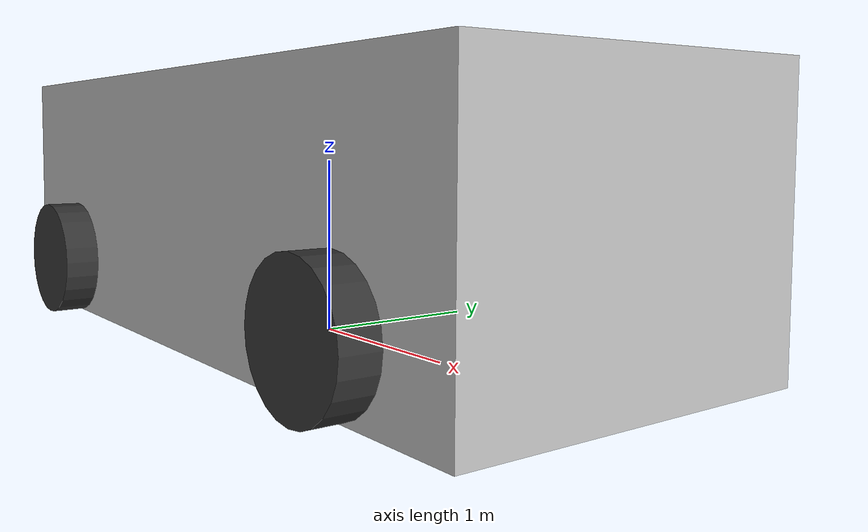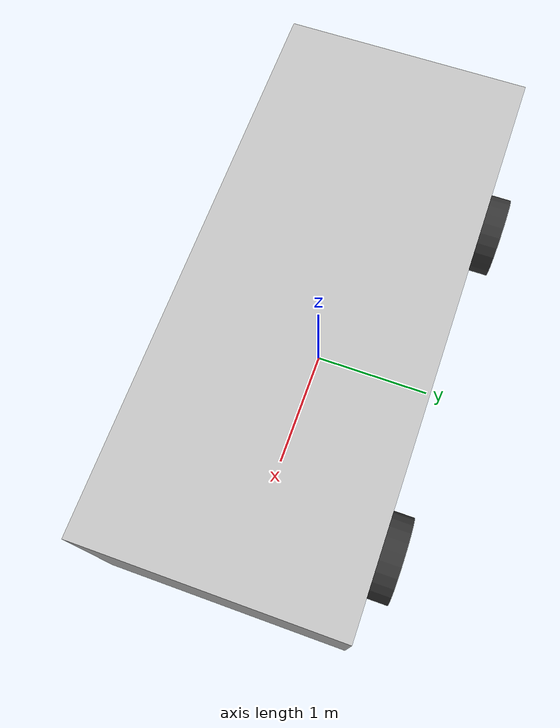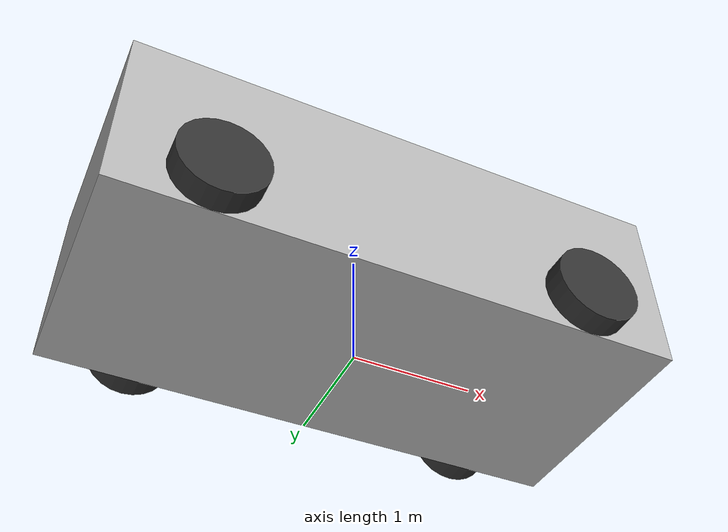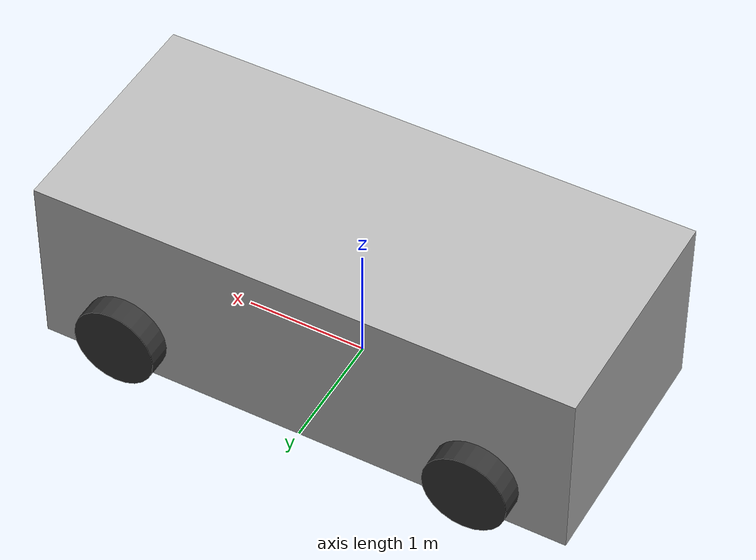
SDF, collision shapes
<?xml version="1.0" ?>
<sdf version="1.9">
  <model name="suv">
    <static>false</static>

    <!-- Vehicle Chassis (using original mesh) -->
    <link name="chassis">
      <pose>0 0 0.5 0 0 0</pose>

      <inertial>
        <mass>1500.0</mass>
        <inertia>
          <ixx>500.0</ixx>
          <ixy>0</ixy>
          <ixz>0</ixz>
          <iyy>1000.0</iyy>
          <iyz>0</iyz>
          <izz>1000.0</izz>
        </inertia>
      </inertial>

      <visual name="visual">
        <pose>0 0 -0.5 0 0 -1.57079632679</pose>
        <geometry>
          <mesh>
            <scale>0.06 0.06 0.06</scale>
            <uri>model://SUV/meshes/suv.obj</uri>
          </mesh>
        </geometry>
      </visual>

      <collision name="collision">
        <pose>0 0 0.25 0 0 0</pose>
        <geometry>
          <box>
            <size>4.5 2.0 1.5</size>
          </box>
        </geometry>
      </collision>

      <!-- NavSat (GNSS) Sensor -->
      <sensor name="navsat_sensor" type="navsat">
        <pose>0 0 0.8 0 0 0</pose>
        <always_on>true</always_on>
        <update_rate>10</update_rate>
        <navsat>
          <position_sensing>
            <horizontal>
              <noise type="gaussian">
                <mean>0.0</mean>
                <stddev>0.1</stddev>
              </noise>
            </horizontal>
            <vertical>
              <noise type="gaussian">
                <mean>0.0</mean>
                <stddev>0.1</stddev>
              </noise>
            </vertical>
          </position_sensing>
        </navsat>
      </sensor>

      <!-- IMU Sensor -->
      <sensor name="imu_sensor" type="imu">
        <pose>0 0 0.5 0 0 0</pose>
        <always_on>true</always_on>
        <update_rate>100</update_rate>
        <imu>
          <angular_velocity>
            <x>
              <noise type="gaussian">
                <mean>0.0</mean>
                <stddev>0.01</stddev>
              </noise>
            </x>
            <y>
              <noise type="gaussian">
                <mean>0.0</mean>
                <stddev>0.01</stddev>
              </noise>
            </y>
            <z>
              <noise type="gaussian">
                <mean>0.0</mean>
                <stddev>0.01</stddev>
              </noise>
            </z>
          </angular_velocity>
          <linear_acceleration>
            <x>
              <noise type="gaussian">
                <mean>0.0</mean>
                <stddev>0.1</stddev>
              </noise>
            </x>
            <y>
              <noise type="gaussian">
                <mean>0.0</mean>
                <stddev>0.1</stddev>
              </noise>
            </y>
            <z>
              <noise type="gaussian">
                <mean>0.0</mean>
                <stddev>0.1</stddev>
              </noise>
            </z>
          </linear_acceleration>
        </imu>
      </sensor>
    </link>

    <!-- Front Left Wheel -->
    <link name="front_left_wheel">
      <pose>1.5 1.1 0.35 -1.5707963267948966 0 0</pose>

      <inertial>
        <mass>30.0</mass>
        <inertia>
          <ixx>1.0</ixx>
          <ixy>0</ixy>
          <ixz>0</ixz>
          <iyy>1.0</iyy>
          <iyz>0</iyz>
          <izz>1.0</izz>
        </inertia>
      </inertial>

      <visual name="wheel_visual">
        <geometry>
          <cylinder>
            <radius>0.35</radius>
            <length>0.2</length>
          </cylinder>
        </geometry>
        <material>
          <ambient>0.1 0.1 0.1 1</ambient>
          <diffuse>0.2 0.2 0.2 1</diffuse>
        </material>
      </visual>

      <collision name="wheel_collision">
        <geometry>
          <cylinder>
            <radius>0.35</radius>
            <length>0.2</length>
          </cylinder>
        </geometry>
        <surface>
          <friction>
            <ode>
              <mu>1.0</mu>
              <mu2>1.0</mu2>
            </ode>
          </friction>
        </surface>
      </collision>
    </link>

    <!-- Front Right Wheel -->
    <link name="front_right_wheel">
      <pose>1.5 -1.1 0.35 -1.5707963267948966 0 0</pose>

      <inertial>
        <mass>30.0</mass>
        <inertia>
          <ixx>1.0</ixx>
          <ixy>0</ixy>
          <ixz>0</ixz>
          <iyy>1.0</iyy>
          <iyz>0</iyz>
          <izz>1.0</izz>
        </inertia>
      </inertial>

      <visual name="wheel_visual">
        <geometry>
          <cylinder>
            <radius>0.35</radius>
            <length>0.2</length>
          </cylinder>
        </geometry>
        <material>
          <ambient>0.1 0.1 0.1 1</ambient>
          <diffuse>0.2 0.2 0.2 1</diffuse>
        </material>
      </visual>

      <collision name="wheel_collision">
        <geometry>
          <cylinder>
            <radius>0.35</radius>
            <length>0.2</length>
          </cylinder>
        </geometry>
        <surface>
          <friction>
            <ode>
              <mu>1.0</mu>
              <mu2>1.0</mu2>
            </ode>
          </friction>
        </surface>
      </collision>
    </link>

    <!-- Rear Left Wheel -->
    <link name="rear_left_wheel">
      <pose>-1.5 1.1 0.35 -1.5707963267948966 0 0</pose>

      <inertial>
        <mass>30.0</mass>
        <inertia>
          <ixx>1.0</ixx>
          <ixy>0</ixy>
          <ixz>0</ixz>
          <iyy>1.0</iyy>
          <iyz>0</iyz>
          <izz>1.0</izz>
        </inertia>
      </inertial>

      <visual name="wheel_visual">
        <geometry>
          <cylinder>
            <radius>0.35</radius>
            <length>0.2</length>
          </cylinder>
        </geometry>
        <material>
          <ambient>0.1 0.1 0.1 1</ambient>
          <diffuse>0.2 0.2 0.2 1</diffuse>
        </material>
      </visual>

      <collision name="wheel_collision">
        <geometry>
          <cylinder>
            <radius>0.35</radius>
            <length>0.2</length>
          </cylinder>
        </geometry>
        <surface>
          <friction>
            <ode>
              <mu>1.0</mu>
              <mu2>1.0</mu2>
            </ode>
          </friction>
        </surface>
      </collision>
    </link>

    <!-- Rear Right Wheel -->
    <link name="rear_right_wheel">
      <pose>-1.5 -1.1 0.35 -1.5707963267948966 0 0</pose>

      <inertial>
        <mass>30.0</mass>
        <inertia>
          <ixx>1.0</ixx>
          <ixy>0</ixy>
          <ixz>0</ixz>
          <iyy>1.0</iyy>
          <iyz>0</iyz>
          <izz>1.0</izz>
        </inertia>
      </inertial>

      <visual name="wheel_visual">
        <geometry>
          <cylinder>
            <radius>0.35</radius>
            <length>0.2</length>
          </cylinder>
        </geometry>
        <material>
          <ambient>0.1 0.1 0.1 1</ambient>
          <diffuse>0.2 0.2 0.2 1</diffuse>
        </material>
      </visual>

      <collision name="wheel_collision">
        <geometry>
          <cylinder>
            <radius>0.35</radius>
            <length>0.2</length>
          </cylinder>
        </geometry>
        <surface>
          <friction>
            <ode>
              <mu>1.0</mu>
              <mu2>1.0</mu2>
            </ode>
          </friction>
        </surface>
      </collision>
    </link>

    <!-- Wheel Joints -->
    <joint name="front_left_wheel_joint" type="revolute">
      <parent>chassis</parent>
      <child>front_left_wheel</child>
      <axis>
        <xyz>0 0 1</xyz>
        <limit>
          <lower>-1.79769e+308</lower>
          <upper>1.79769e+308</upper>
        </limit>
      </axis>
    </joint>

    <joint name="front_right_wheel_joint" type="revolute">
      <parent>chassis</parent>
      <child>front_right_wheel</child>
      <axis>
        <xyz>0 0 1</xyz>
        <limit>
          <lower>-1.79769e+308</lower>
          <upper>1.79769e+308</upper>
        </limit>
      </axis>
    </joint>

    <joint name="rear_left_wheel_joint" type="revolute">
      <parent>chassis</parent>
      <child>rear_left_wheel</child>
      <axis>
        <xyz>0 0 1</xyz>
        <limit>
          <lower>-1.79769e+308</lower>
          <upper>1.79769e+308</upper>
        </limit>
      </axis>
    </joint>

    <joint name="rear_right_wheel_joint" type="revolute">
      <parent>chassis</parent>
      <child>rear_right_wheel</child>
      <axis>
        <xyz>0 0 1</xyz>
        <limit>
          <lower>-1.79769e+308</lower>
          <upper>1.79769e+308</upper>
        </limit>
      </axis>
    </joint>

    <!-- Diff Drive Plugin -->
    <plugin
      filename="gz-sim-diff-drive-system"
      name="gz::sim::systems::DiffDrive">
      <left_joint>rear_left_wheel_joint</left_joint>
      <right_joint>rear_right_wheel_joint</right_joint>
      <wheel_separation>2.2</wheel_separation>
      <wheel_radius>0.35</wheel_radius>
      <odom_publish_frequency>1000</odom_publish_frequency>
      <topic>cmd_vel</topic>
      <odom_topic>odom_wheel</odom_topic>
      <frame_id>odom</frame_id>
      <child_frame_id>chassis</child_frame_id>
    </plugin>

    <!-- Ground Truth Odometry Plugin -->
    <plugin
      filename="gz-sim-odometry-publisher-system"
      name="gz::sim::systems::OdometryPublisher">
      <odom_frame>odom</odom_frame>
      <robot_base_frame>chassis</robot_base_frame>
      <odom_publish_frequency>1000</odom_publish_frequency>
      <odom_topic>odom</odom_topic>
    </plugin>

    <!-- NavSat Plugin -->
    <plugin
      filename="gz-sim-navsat-system"
      name="gz::sim::systems::NavSat">
    </plugin>

    <!-- IMU Plugin -->
    <plugin
      filename="gz-sim-imu-system"
      name="gz::sim::systems::Imu">
    </plugin>

  </model>
</sdf>
